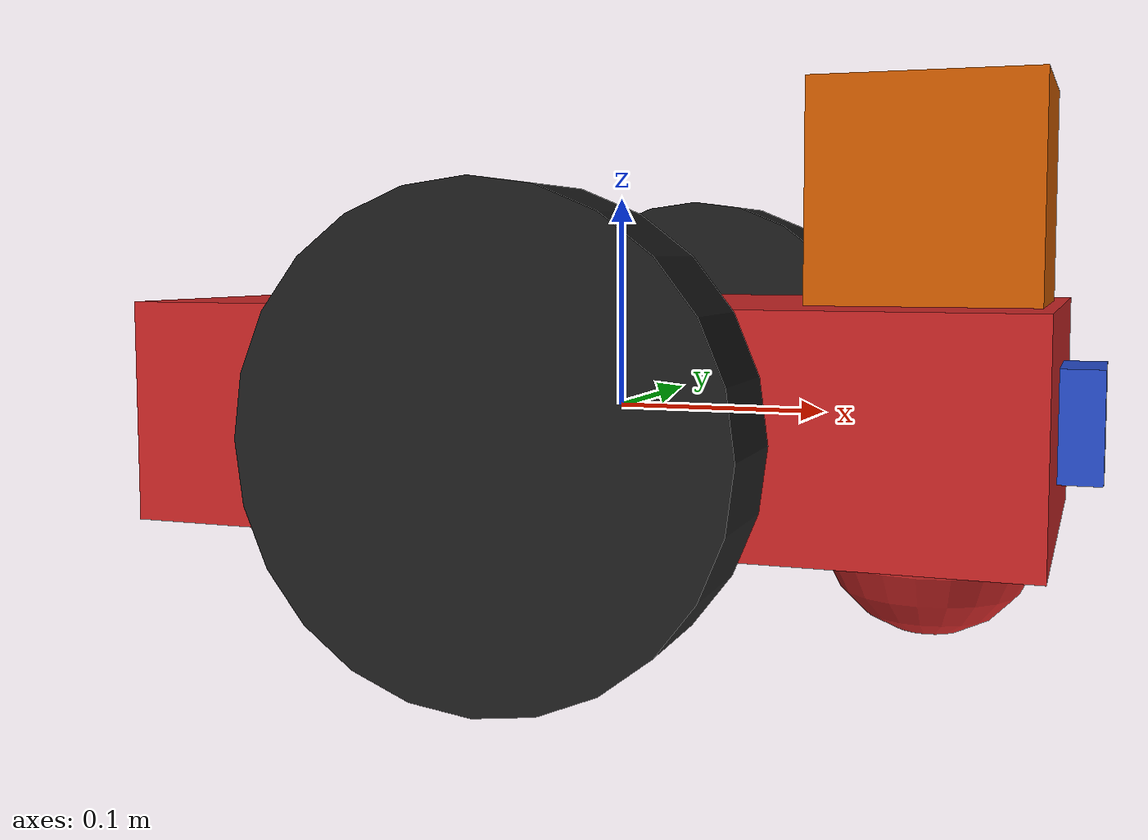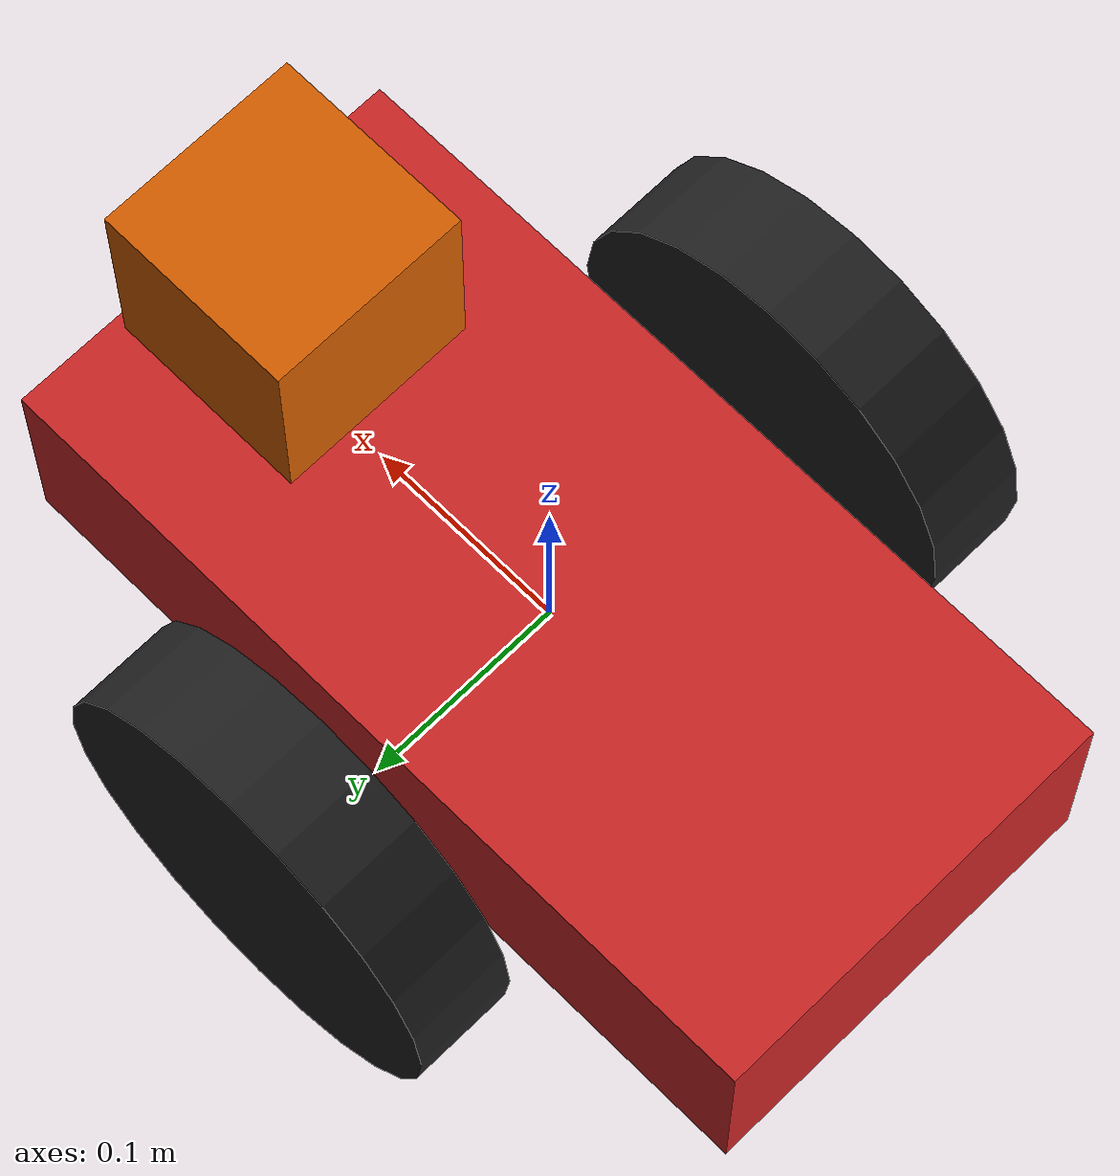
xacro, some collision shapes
<?xml version='1.0'?>

<robot name="my_robot" xmlns:xacro="http://www.ros.org/wiki/xacro">
    <xacro:include filename="$(find my_robot)/urdf/my_robot.gazebo" />

    <link name="robot_footprint"></link>

    <joint name="robot_footprint_joint" type="fixed">
        <origin xyz="0 0 0" rpy="0 0 0" />
        <parent link="robot_footprint" />
        <child link="chassis" />
    </joint>

    <link name='chassis'>
        <pose>0 0 0.1 0 0 0</pose>

        <inertial>
            <mass value="15.0" />
            <origin xyz="0.0 0 0" rpy=" 0 0 0" />
            <inertia ixx="0.1" ixy="0" ixz="0" iyy="0.1" iyz="0" izz="0.1" />
        </inertial>

        <collision name='collision'>
            <origin xyz="0 0 0" rpy=" 0 0 0" />
            <geometry>
                <box size=".412 .206 .103" /> <!-- BEGIN: Adjusted chassis dimensions -->
            </geometry>
        </collision>

        <visual name='chassis_visual'>
            <origin xyz="0 0 0" rpy=" 0 0 0" />
            <geometry>
                <box size=".412 .206 .103" /> <!-- BEGIN: Adjusted chassis dimensions -->
            </geometry>
        </visual>

        <collision name='back_caster_collision'>
            <origin xyz="-0.15 0 -0.05" rpy=" 0 0 0" />
            <geometry>
                <sphere radius="0.0499" />
            </geometry>
        </collision>

        <visual name='back_caster_visual'>
            <origin xyz="-0.15 0 -0.05" rpy=" 0 0 0" />
            <geometry>
                <sphere radius="0.05" />
            </geometry>
        </visual>

        <collision name='front_caster_collision'>
            <origin xyz="0.15 0 -0.05" rpy=" 0 0 0" />
            <geometry>
                <sphere radius="0.0499" />
            </geometry>
        </collision>

        <visual name='front_caster_visual'>
            <origin xyz="0.15 0 -0.05" rpy=" 0 0 0" />
            <geometry>
                <sphere radius="0.05" />
            </geometry>
        </visual>

    </link>

    <!-- my enhancements
   -->

    <link name="left_wheel">
        <inertial>
            <mass value="5.0" />
            <origin xyz="0.0 0 0" rpy=" 0 1.5707 1.5707" />
            <inertia ixx="0.1" ixy="0" ixz="0" iyy="0.1" iyz="0" izz="0.1" />
        </inertial>

        <collision name='left_wheel_collision'>
            <origin xyz="0 0 0" rpy=" 0 1.5707 1.5707" />
            <geometry>
                <cylinder length="0.05" radius="0.103" /> <!-- BEGIN: Adjusted wheel radius -->
            </geometry>
        </collision>

        <visual name='left_wheel_visual'>
            <origin xyz="0 0 0" rpy=" 0 1.5705 1.5707" />
            <geometry>
                <cylinder length="0.05" radius="0.103" /> <!-- BEGIN: Adjusted wheel radius -->
            </geometry>
        </visual>

    </link>

    <joint type="continuous" name="left_wheel_hinge">
        <origin xyz="0 0.15 0" rpy="0 0 0" />
        <child link="left_wheel" />
        <parent link="chassis" />
        <axis xyz="0 1 0" rpy="0 0 0" />
        <limit effort="10000" velocity="1000" />
        <dynamics damping="1.0" friction="1.0" />
    </joint>

    <link name="right_wheel">

        <inertial>
            <mass value="5.0" />
            <origin xyz="0 0 0" rpy=" 0 1.5707 1.5707" />
            <inertia ixx="0.1" ixy="0" ixz="0" iyy="0.1" iyz="0" izz="0.1" />
        </inertial>

        <collision name='right_wheel_collision'>
            <origin xyz="0 0 0" rpy=" 0 1.5707 1.5707" />
            <geometry>
                <cylinder length="0.05" radius="0.103" /> <!-- BEGIN: Adjusted wheel radius -->
            </geometry>
        </collision>

        <visual name='right_wheel_visual'>
            <origin xyz="0 0 0" rpy=" 0 1.5705 1.5707" />
            <geometry>
                <cylinder length="0.05" radius="0.103" /> <!-- BEGIN: Adjusted wheel radius -->
            </geometry>
        </visual>

    </link>

    <joint type="continuous" name="right_wheel_hinge">
        <origin xyz="0 -0.15 0" rpy="0 0 0" />
        <child link="right_wheel" />
        <parent link="chassis" />
        <axis xyz="0 1 0" rpy="0 0 0" />
        <limit effort="10000" velocity="1000" />
        <dynamics damping="1.0" friction="1.0" />
    </joint>

    <!-- Camera  -->
    <link name="camera">
        <inertial>
            <mass value="0.1" />
            <origin xyz="0 0 0" rpy=" 0 0 0" />
            <inertia ixx="1e-6" ixy="0" ixz="0" iyy="1e-6" iyz="0" izz="1e-6" />
        </inertial>

        <collision name='camera_collision'>
            <origin xyz="0 0 0" rpy=" 0 0 0" />
            <geometry>
                <box size="0.05 0.05 0.05" />
            </geometry>
        </collision>

        <visual name='camera_visual'>
            <origin xyz="0 0 0" rpy=" 0 0 0" />
            <geometry>
                <box size="0.05 0.05 0.05" />
            </geometry>
        </visual>
    </link>

    <!-- Camera Joint -->
    <joint type="fixed" name="camera_joint">
        <origin xyz="0.2 0 0" rpy="0 0 0" />
        <child link="camera" />
        <parent link="chassis" />
        <axis xyz="0 1 0" rpy="0 0 0" />
    </joint>

    <!-- Lidar -->
    <link name="hokuyo">
        <inertial>
            <mass value="1e-5" />
            <origin xyz="0 0 0" rpy=" 0 0 0" />
            <inertia ixx="1e-6" ixy="0" ixz="0" iyy="1e-6" iyz="0" izz="1e-6" />
        </inertial>

        <collision name='hokuyo_collision'>
            <origin xyz="0 0 0" rpy=" 0 0 0" />
            <geometry>
                <box size="0.1 0.1 0.1" />
            </geometry>
        </collision>

        <visual name='hokuyo_visual'>
            <origin xyz="0 0 0" rpy=" 0 0 0" />
            <geometry>
                <mesh filename="package://my_robot/meshes/hokuyo.dae" />
            </geometry>
        </visual>
    </link>

    <joint type="fixed" name="hokuyo_joint">
        <origin xyz="0.15 0 0.1" rpy="0 0 0" />
        <child link="hokuyo" />
        <parent link="chassis" />
        <axis xyz="0 1 0" rpy="0 0 0" />
    </joint>

    <!-- Color  -->
    <gazebo reference="chassis">
        <material>Gazebo/Red</material>
    </gazebo>

    <gazebo reference="camera">
        <material>Gazebo/Blue</material>
    </gazebo>

    <gazebo reference="left_wheel">
        <material>Gazebo/Black</material>
    </gazebo>

    <gazebo reference="right_wheel">
        <material>Gazebo/Black</material>
    </gazebo>

</robot>
